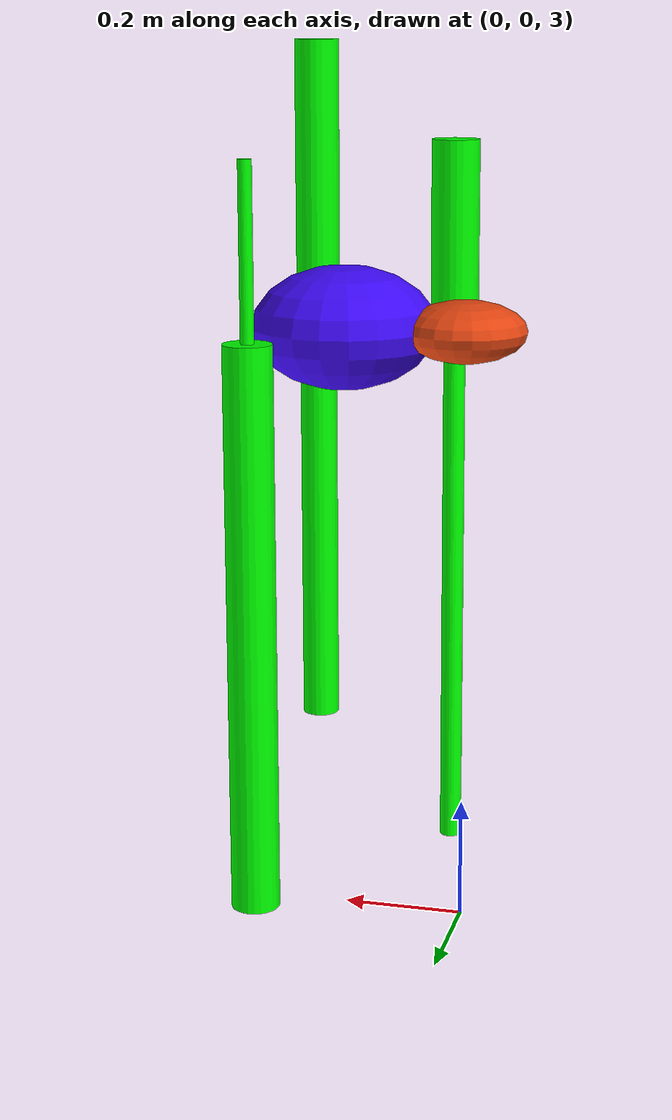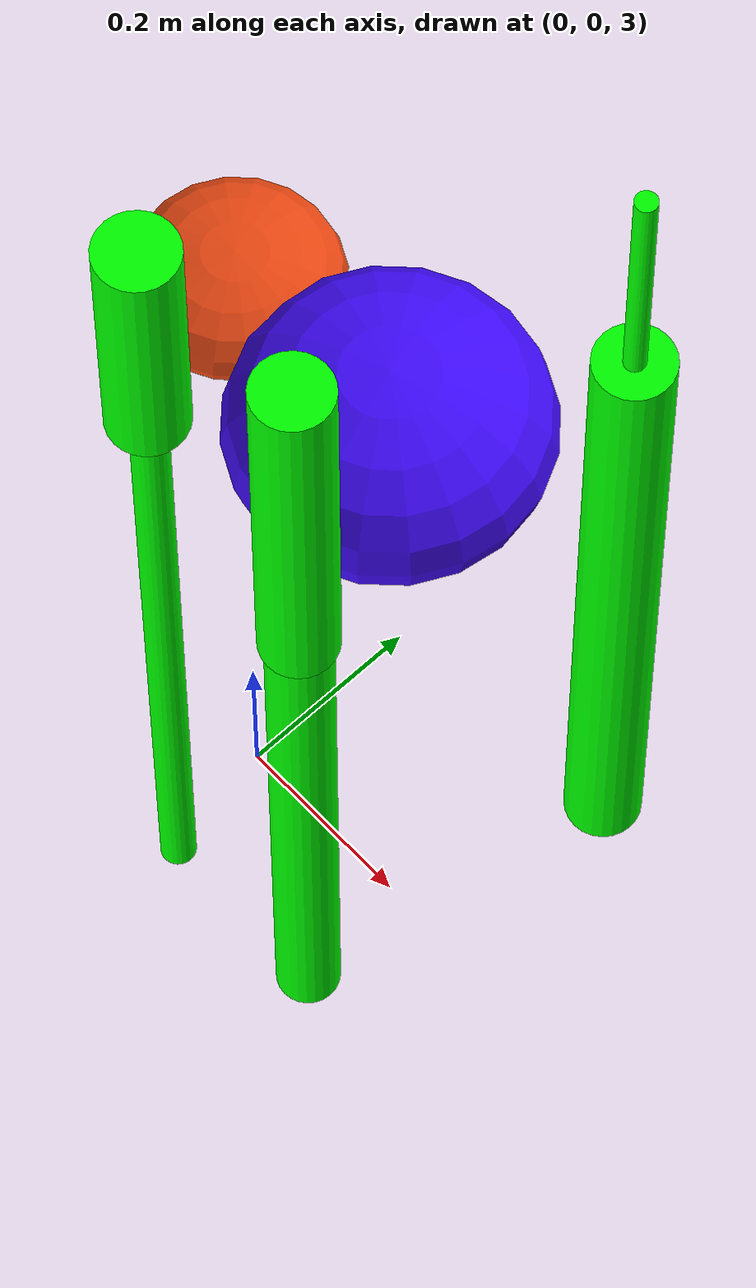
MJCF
<mujoco model="unnamed_model">
  <option timestep="0.01"/>
  <visual>
    <headlight ambient="0.5 0.5 0.5"/>
  </visual>
  <default>
    <default class="/"/>
  </default>
  <worldbody>
    <light name="//unnamed_light_0" class="/" pos="0 0 3" dir="0 0 -1" diffuse="0.5 0.5 0.5"/>
    <geom name="//unnamed_geom_0" class="/" type="plane" size="50 50 0.10000000000000001"/>
    <body name="//unnamed_body_0" pos="0 0 4">
      <joint name="//unnamed_joint_0" class="/" type="free"/>
      <geom name="//unnamed_geom_1" class="/" type="ellipsoid" size="0.10000000000000001 0.10000000000000001 0.050000000000000003" rgba="0.91000000000000003 0.27800000000000002 0.070999999999999994 1" pos="0 0 0"/>
      <geom name="//unnamed_geom_2" class="/" type="ellipsoid" size="0.14999999999999999 0.14999999999999999 0.10000000000000001" rgba="0.247 0.035000000000000003 0.97999999999999998 1" pos="0.20000000000000001 0 0"/>
      <body name="limb1" pos="0.050000000000000003 -0.14999999999999999 -0.45992264123072568">
        <geom name="//unnamed_geom_3" class="/" type="cylinder" size="0.018182997247425083 0.45992264123072568" rgba="0 1 0 1"/>
        <joint name="limb1_joint" class="/" type="hinge" pos="0 0 0.45992264123072568" axis="0 1 0" range="-45 45"/>
      </body>
      <body name="limb2" pos="0.29999999999999999 0.20000000000000001 -0.46376094434441539">
        <geom name="//unnamed_geom_4" class="/" type="cylinder" size="0.039461848532768684 0.46376094434441539" rgba="0 1 0 1"/>
        <joint name="limb2_joint" class="/" type="hinge" pos="0 0 0.46376094434441539" axis="0 1 0" range="-45 45"/>
      </body>
      <body name="limb3" pos="0.29999999999999999 -0.20000000000000001 -0.36480280611589422">
        <geom name="//unnamed_geom_5" class="/" type="cylinder" size="0.031224774474424483 0.36480280611589422" rgba="0 1 0 1"/>
        <joint name="limb3_joint" class="/" type="hinge" pos="0 0 0.36480280611589422" axis="0 1 0" range="-45 45"/>
      </body>
      <body name="back_limb1" pos="0.050000000000000003 -0.14999999999999999 0.14649652576370384">
        <geom name="//unnamed_geom_6" class="/" type="cylinder" size="0.039639132932314483 0.14649652576370384" rgba="0 1 0 1"/>
        <joint name="back_limb1_joint" class="/" type="hinge" pos="0 0 -0.14649652576370384" axis="0 1 0" range="-45 45"/>
      </body>
      <body name="back_limb2" pos="0.29999999999999999 0.20000000000000001 0.14032507207864264">
        <geom name="//unnamed_geom_7" class="/" type="cylinder" size="0.010888549999389594 0.14032507207864264" rgba="0 1 0 1"/>
        <joint name="back_limb2_joint" class="/" type="hinge" pos="0 0 -0.14032507207864264" axis="0 1 0" range="-45 45"/>
      </body>
      <body name="back_limb3" pos="0.29999999999999999 -0.20000000000000001 0.22534928736545068">
        <geom name="//unnamed_geom_8" class="/" type="cylinder" size="0.036959388608303965 0.22534928736545068" rgba="0 1 0 1"/>
        <joint name="back_limb3_joint" class="/" type="hinge" pos="0 0 -0.22534928736545068" axis="0 1 0" range="-45 45"/>
      </body>
    </body>
  </worldbody>
  <actuator>
    <motor name="motor_limb1_joint" class="/" ctrllimited="true" ctrlrange="-45 45" gear="1" joint="limb1_joint"/>
    <motor name="motor_limb2_joint" class="/" ctrllimited="true" ctrlrange="-45 45" gear="1" joint="limb2_joint"/>
    <motor name="motor_limb3_joint" class="/" ctrllimited="true" ctrlrange="-45 45" gear="1" joint="limb3_joint"/>
    <motor name="motor_back_back_limb1_joint" class="/" ctrllimited="true" ctrlrange="-45 45" gear="1" joint="back_limb1_joint"/>
    <motor name="motor_back_back_limb2_joint" class="/" ctrllimited="true" ctrlrange="-45 45" gear="1" joint="back_limb2_joint"/>
    <motor name="motor_back_back_limb3_joint" class="/" ctrllimited="true" ctrlrange="-45 45" gear="1" joint="back_limb3_joint"/>
  </actuator>
</mujoco>
